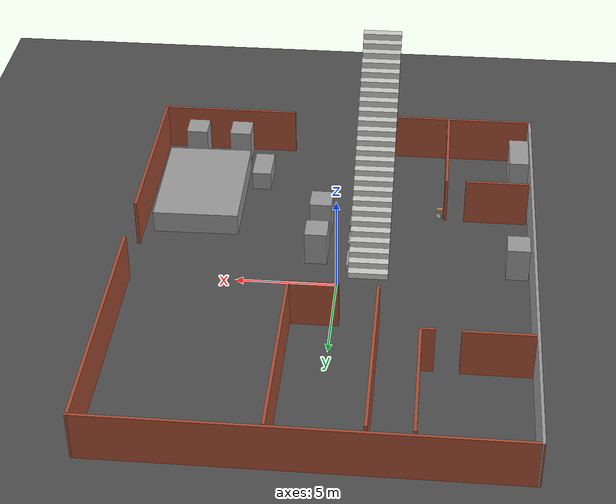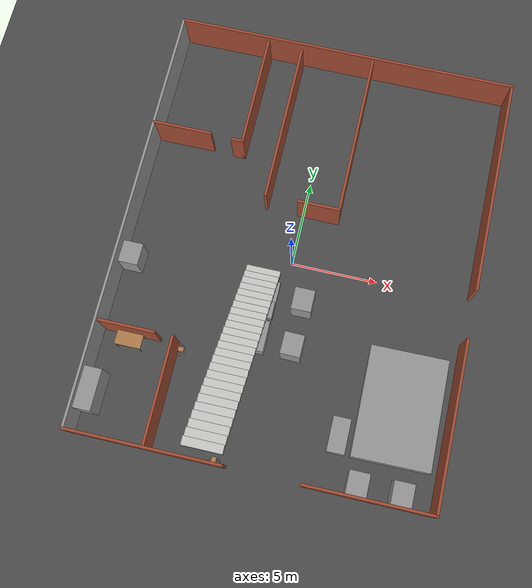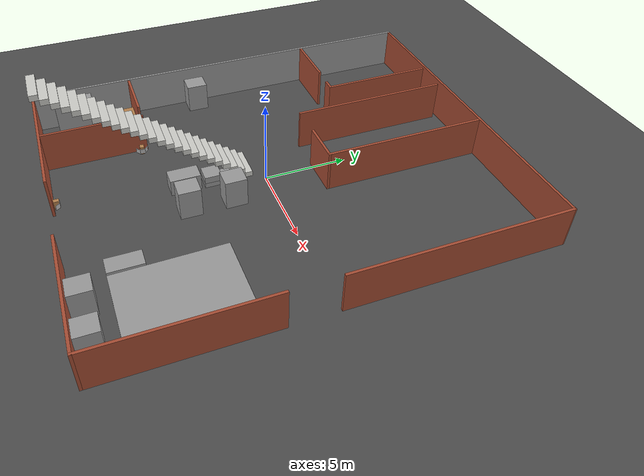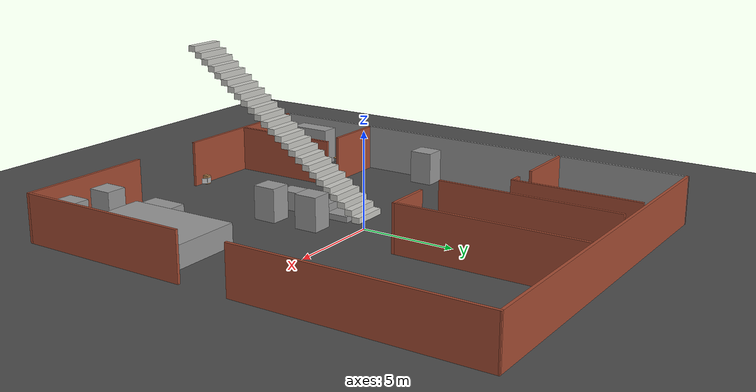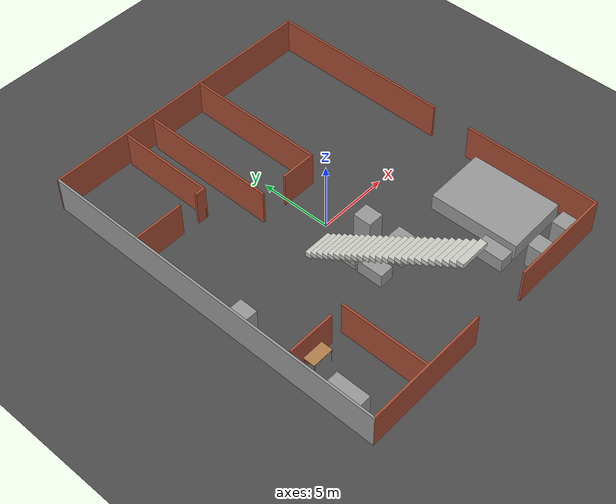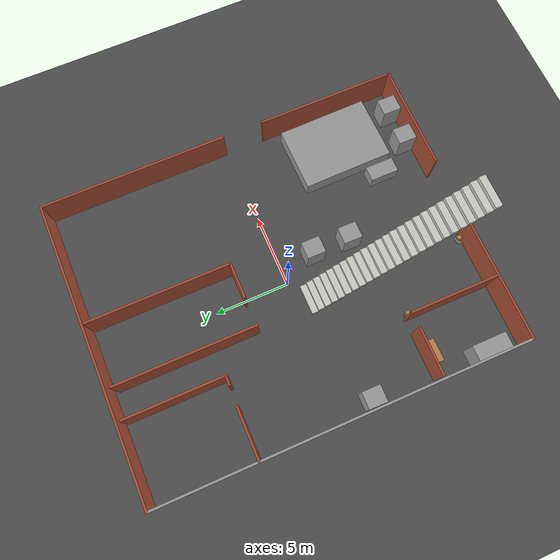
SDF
<sdf version="1.6">
 <world name="default">
  <model name="ground_plane">
   <static>1</static>
   <link name="link">
    <collision name="collision">
     <geometry><plane><normal>0 0 1</normal><size>100 100</size></plane></geometry>
     <surface><friction><ode><mu>100</mu><mu2>50</mu2></ode></friction></surface>
    </collision>
    <visual name="visual">
     <cast_shadows>0</cast_shadows>
     <geometry><plane><normal>0 0 1</normal><size>100 100</size></plane></geometry>
     <material>
      <script><uri>file://media/materials/scripts/gazebo.material</uri><name>Gazebo/DarkGrey</name></script>
     </material>
    </visual>
   </link>
  </model>
  <model name="CIMA_LAB">
   <pose>0.392007 0.399325 0 0 -0 0</pose>
   <link name="Stairs_2">
    <visual name="Stairs_2_Visual_0">
     <pose>-1.90803 -1.27666 0.16 0 -0 0</pose>
     <geometry><box><size>2 0.44 0.32</size></box></geometry>
     <material>
      <script><uri>file://media/materials/scripts/gazebo.material</uri><name>Gazebo/CeilingTiled</name></script>
      <ambient>0.760784 0.662745 0.627451 1</ambient>
     </material>
     <meta><layer>0</layer></meta>
    </visual>
    <collision name="Stairs_2_Collision_0">
     <geometry><box><size>2 0.44 0.32</size></box></geometry>
     <pose>-1.90803 -1.27666 0.16 0 -0 0</pose>
    </collision>
    <visual name="Stairs_2_Visual_1">
     <pose>-1.90803 -1.71666 0.48 0 -0 0</pose>
     <geometry><box><size>2 0.44 0.32</size></box></geometry>
     <material>
      <script><uri>file://media/materials/scripts/gazebo.material</uri><name>Gazebo/CeilingTiled</name></script>
      <ambient>0.760784 0.662745 0.627451 1</ambient>
     </material>
     <meta><layer>0</layer></meta>
    </visual>
    <collision name="Stairs_2_Collision_1">
     <geometry><box><size>2 0.44 0.32</size></box></geometry>
     <pose>-1.90803 -1.71666 0.48 0 -0 0</pose>
    </collision>
    <visual name="Stairs_2_Visual_2">
     <pose>-1.90803 -2.15666 0.8 0 -0 0</pose>
     <geometry><box><size>2 0.44 0.32</size></box></geometry>
     <material>
      <script><uri>file://media/materials/scripts/gazebo.material</uri><name>Gazebo/CeilingTiled</name></script>
      <ambient>0.760784 0.662745 0.627451 1</ambient>
     </material>
     <meta><layer>0</layer></meta>
    </visual>
    <collision name="Stairs_2_Collision_2">
     <geometry><box><size>2 0.44 0.32</size></box></geometry>
     <pose>-1.90803 -2.15666 0.8 0 -0 0</pose>
    </collision>
    <visual name="Stairs_2_Visual_3">
     <pose>-1.90803 -2.59666 1.12 0 -0 0</pose>
     <geometry><box><size>2 0.44 0.32</size></box></geometry>
     <material>
      <script><uri>file://media/materials/scripts/gazebo.material</uri><name>Gazebo/CeilingTiled</name></script>
      <ambient>0.760784 0.662745 0.627451 1</ambient>
     </material>
     <meta><layer>0</layer></meta>
    </visual>
    <collision name="Stairs_2_Collision_3">
     <geometry><box><size>2 0.44 0.32</size></box></geometry>
     <pose>-1.90803 -2.59666 1.12 0 -0 0</pose>
    </collision>
    <visual name="Stairs_2_Visual_4">
     <pose>-1.90803 -3.03666 1.44 0 -0 0</pose>
     <geometry><box><size>2 0.44 0.32</size></box></geometry>
     <material>
      <script><uri>file://media/materials/scripts/gazebo.material</uri><name>Gazebo/CeilingTiled</name></script>
      <ambient>0.760784 0.662745 0.627451 1</ambient>
     </material>
     <meta><layer>0</layer></meta>
    </visual>
    <collision name="Stairs_2_Collision_4">
     <geometry><box><size>2 0.44 0.32</size></box></geometry>
     <pose>-1.90803 -3.03666 1.44 0 -0 0</pose>
    </collision>
    <visual name="Stairs_2_Visual_5">
     <pose>-1.90803 -3.47666 1.76 0 -0 0</pose>
     <geometry><box><size>2 0.44 0.32</size></box></geometry>
     <material>
      <script><uri>file://media/materials/scripts/gazebo.material</uri><name>Gazebo/CeilingTiled</name></script>
      <ambient>0.760784 0.662745 0.627451 1</ambient>
     </material>
     <meta><layer>0</layer></meta>
    </visual>
    <collision name="Stairs_2_Collision_5">
     <geometry><box><size>2 0.44 0.32</size></box></geometry>
     <pose>-1.90803 -3.47666 1.76 0 -0 0</pose>
    </collision>
    <visual name="Stairs_2_Visual_6">
     <pose>-1.90803 -3.91666 2.08 0 -0 0</pose>
     <geometry><box><size>2 0.44 0.32</size></box></geometry>
     <material>
      <script><uri>file://media/materials/scripts/gazebo.material</uri><name>Gazebo/CeilingTiled</name></script>
      <ambient>0.760784 0.662745 0.627451 1</ambient>
     </material>
     <meta><layer>0</layer></meta>
    </visual>
    <collision name="Stairs_2_Collision_6">
     <geometry><box><size>2 0.44 0.32</size></box></geometry>
     <pose>-1.90803 -3.91666 2.08 0 -0 0</pose>
    </collision>
    <visual name="Stairs_2_Visual_7">
     <pose>-1.90803 -4.35666 2.4 0 -0 0</pose>
     <geometry><box><size>2 0.44 0.32</size></box></geometry>
     <material>
      <script><uri>file://media/materials/scripts/gazebo.material</uri><name>Gazebo/CeilingTiled</name></script>
      <ambient>0.760784 0.662745 0.627451 1</ambient>
     </material>
     <meta><layer>0</layer></meta>
    </visual>
    <collision name="Stairs_2_Collision_7">
     <geometry><box><size>2 0.44 0.32</size></box></geometry>
     <pose>-1.90803 -4.35666 2.4 0 -0 0</pose>
    </collision>
    <visual name="Stairs_2_Visual_8">
     <pose>-1.90803 -4.79666 2.72 0 -0 0</pose>
     <geometry><box><size>2 0.44 0.32</size></box></geometry>
     <material>
      <script><uri>file://media/materials/scripts/gazebo.material</uri><name>Gazebo/CeilingTiled</name></script>
      <ambient>0.760784 0.662745 0.627451 1</ambient>
     </material>
     <meta><layer>0</layer></meta>
    </visual>
    <collision name="Stairs_2_Collision_8">
     <geometry><box><size>2 0.44 0.32</size></box></geometry>
     <pose>-1.90803 -4.79666 2.72 0 -0 0</pose>
    </collision>
    <visual name="Stairs_2_Visual_9">
     <pose>-1.90803 -5.23666 3.04 0 -0 0</pose>
     <geometry><box><size>2 0.44 0.32</size></box></geometry>
     <material>
      <script><uri>file://media/materials/scripts/gazebo.material</uri><name>Gazebo/CeilingTiled</name></script>
      <ambient>0.760784 0.662745 0.627451 1</ambient>
     </material>
     <meta><layer>0</layer></meta>
    </visual>
    <collision name="Stairs_2_Collision_9">
     <geometry><box><size>2 0.44 0.32</size></box></geometry>
     <pose>-1.90803 -5.23666 3.04 0 -0 0</pose>
    </collision>
    <visual name="Stairs_2_Visual_10">
     <pose>-1.90803 -5.67666 3.36 0 -0 0</pose>
     <geometry><box><size>2 0.44 0.32</size></box></geometry>
     <material>
      <script><uri>file://media/materials/scripts/gazebo.material</uri><name>Gazebo/CeilingTiled</name></script>
      <ambient>0.760784 0.662745 0.627451 1</ambient>
     </material>
     <meta><layer>0</layer></meta>
    </visual>
    <collision name="Stairs_2_Collision_10">
     <geometry><box><size>2 0.44 0.32</size></box></geometry>
     <pose>-1.90803 -5.67666 3.36 0 -0 0</pose>
    </collision>
    <visual name="Stairs_2_Visual_11">
     <pose>-1.90803 -6.11666 3.68 0 -0 0</pose>
     <geometry><box><size>2 0.44 0.32</size></box></geometry>
     <material>
      <script><uri>file://media/materials/scripts/gazebo.material</uri><name>Gazebo/CeilingTiled</name></script>
      <ambient>0.760784 0.662745 0.627451 1</ambient>
     </material>
     <meta><layer>0</layer></meta>
    </visual>
    <collision name="Stairs_2_Collision_11">
     <geometry><box><size>2 0.44 0.32</size></box></geometry>
     <pose>-1.90803 -6.11666 3.68 0 -0 0</pose>
    </collision>
    <visual name="Stairs_2_Visual_12">
     <pose>-1.90803 -6.55666 4 0 -0 0</pose>
     <geometry><box><size>2 0.44 0.32</size></box></geometry>
     <material>
      <script><uri>file://media/materials/scripts/gazebo.material</uri><name>Gazebo/CeilingTiled</name></script>
      <ambient>0.760784 0.662745 0.627451 1</ambient>
     </material>
     <meta><layer>0</layer></meta>
    </visual>
    <collision name="Stairs_2_Collision_12">
     <geometry><box><size>2 0.44 0.32</size></box></geometry>
     <pose>-1.90803 -6.55666 4 0 -0 0</pose>
    </collision>
    <visual name="Stairs_2_Visual_13">
     <pose>-1.90803 -6.99666 4.32 0 -0 0</pose>
     <geometry><box><size>2 0.44 0.32</size></box></geometry>
     <material>
      <script><uri>file://media/materials/scripts/gazebo.material</uri><name>Gazebo/CeilingTiled</name></script>
      <ambient>0.760784 0.662745 0.627451 1</ambient>
     </material>
     <meta><layer>0</layer></meta>
    </visual>
    <collision name="Stairs_2_Collision_13">
     <geometry><box><size>2 0.44 0.32</size></box></geometry>
     <pose>-1.90803 -6.99666 4.32 0 -0 0</pose>
    </collision>
    <visual name="Stairs_2_Visual_14">
     <pose>-1.90803 -7.43666 4.64 0 -0 0</pose>
     <geometry><box><size>2 0.44 0.32</size></box></geometry>
     <material>
      <script><uri>file://media/materials/scripts/gazebo.material</uri><name>Gazebo/CeilingTiled</name></script>
      <ambient>0.760784 0.662745 0.627451 1</ambient>
     </material>
     <meta><layer>0</layer></meta>
    </visual>
    <collision name="Stairs_2_Collision_14">
     <geometry><box><size>2 0.44 0.32</size></box></geometry>
     <pose>-1.90803 -7.43666 4.64 0 -0 0</pose>
    </collision>
    <visual name="Stairs_2_Visual_15">
     <pose>-1.90803 -7.87666 4.96 0 -0 0</pose>
     <geometry><box><size>2 0.44 0.32</size></box></geometry>
     <material>
      <script><uri>file://media/materials/scripts/gazebo.material</uri><name>Gazebo/CeilingTiled</name></script>
      <ambient>0.760784 0.662745 0.627451 1</ambient>
     </material>
     <meta><layer>0</layer></meta>
    </visual>
    <collision name="Stairs_2_Collision_15">
     <geometry><box><size>2 0.44 0.32</size></box></geometry>
     <pose>-1.90803 -7.87666 4.96 0 -0 0</pose>
    </collision>
    <visual name="Stairs_2_Visual_16">
     <pose>-1.90803 -8.31666 5.28 0 -0 0</pose>
     <geometry><box><size>2 0.44 0.32</size></box></geometry>
     <material>
      <script><uri>file://media/materials/scripts/gazebo.material</uri><name>Gazebo/CeilingTiled</name></script>
      <ambient>0.760784 0.662745 0.627451 1</ambient>
     </material>
     <meta><layer>0</layer></meta>
    </visual>
    <collision name="Stairs_2_Collision_16">
     <geometry><box><size>2 0.44 0.32</size></box></geometry>
     <pose>-1.90803 -8.31666 5.28 0 -0 0</pose>
    </collision>
    <visual name="Stairs_2_Visual_17">
     <pose>-1.90803 -8.75666 5.6 0 -0 0</pose>
     <geometry><box><size>2 0.44 0.32</size></box></geometry>
     <material>
      <script><uri>file://media/materials/scripts/gazebo.material</uri><name>Gazebo/CeilingTiled</name></script>
      <ambient>0.760784 0.662745 0.627451 1</ambient>
     </material>
     <meta><layer>0</layer></meta>
    </visual>
    <collision name="Stairs_2_Collision_17">
     <geometry><box><size>2 0.44 0.32</size></box></geometry>
     <pose>-1.90803 -8.75666 5.6 0 -0 0</pose>
    </collision>
    <visual name="Stairs_2_Visual_18">
     <pose>-1.90803 -9.19666 5.92 0 -0 0</pose>
     <geometry><box><size>2 0.44 0.32</size></box></geometry>
     <material>
      <script><uri>file://media/materials/scripts/gazebo.material</uri><name>Gazebo/CeilingTiled</name></script>
      <ambient>0.760784 0.662745 0.627451 1</ambient>
     </material>
     <meta><layer>0</layer></meta>
    </visual>
    <collision name="Stairs_2_Collision_18">
     <geometry><box><size>2 0.44 0.32</size></box></geometry>
     <pose>-1.90803 -9.19666 5.92 0 -0 0</pose>
    </collision>
    <visual name="Stairs_2_Visual_19">
     <pose>-1.90803 -9.63666 6.24 0 -0 0</pose>
     <geometry><box><size>2 0.44 0.32</size></box></geometry>
     <material>
      <script><uri>file://media/materials/scripts/gazebo.material</uri><name>Gazebo/CeilingTiled</name></script>
      <ambient>0.760784 0.662745 0.627451 1</ambient>
     </material>
     <meta><layer>0</layer></meta>
    </visual>
    <collision name="Stairs_2_Collision_19">
     <geometry><box><size>2 0.44 0.32</size></box></geometry>
     <pose>-1.90803 -9.63666 6.24 0 -0 0</pose>
    </collision>
    <visual name="Stairs_2_Visual_20">
     <pose>-1.90803 -10.0767 6.56 0 -0 0</pose>
     <geometry><box><size>2 0.44 0.32</size></box></geometry>
     <material>
      <script><uri>file://media/materials/scripts/gazebo.material</uri><name>Gazebo/CeilingTiled</name></script>
      <ambient>0.760784 0.662745 0.627451 1</ambient>
     </material>
     <meta><layer>0</layer></meta>
    </visual>
    <collision name="Stairs_2_Collision_20">
     <geometry><box><size>2 0.44 0.32</size></box></geometry>
     <pose>-1.90803 -10.0767 6.56 0 -0 0</pose>
    </collision>
    <visual name="Stairs_2_Visual_21">
     <pose>-1.90803 -10.5167 6.88 0 -0 0</pose>
     <geometry><box><size>2 0.44 0.32</size></box></geometry>
     <material>
      <script><uri>file://media/materials/scripts/gazebo.material</uri><name>Gazebo/CeilingTiled</name></script>
      <ambient>0.760784 0.662745 0.627451 1</ambient>
     </material>
     <meta><layer>0</layer></meta>
    </visual>
    <collision name="Stairs_2_Collision_21">
     <geometry><box><size>2 0.44 0.32</size></box></geometry>
     <pose>-1.90803 -10.5167 6.88 0 -0 0</pose>
    </collision>
    <visual name="Stairs_2_Visual_22">
     <pose>-1.90803 -10.9567 7.2 0 -0 0</pose>
     <geometry><box><size>2 0.44 0.32</size></box></geometry>
     <material>
      <script><uri>file://media/materials/scripts/gazebo.material</uri><name>Gazebo/CeilingTiled</name></script>
      <ambient>0.760784 0.662745 0.627451 1</ambient>
     </material>
     <meta><layer>0</layer></meta>
    </visual>
    <collision name="Stairs_2_Collision_22">
     <geometry><box><size>2 0.44 0.32</size></box></geometry>
     <pose>-1.90803 -10.9567 7.2 0 -0 0</pose>
    </collision>
    <visual name="Stairs_2_Visual_23">
     <pose>-1.90803 -11.3967 7.52 0 -0 0</pose>
     <geometry><box><size>2 0.44 0.32</size></box></geometry>
     <material>
      <script><uri>file://media/materials/scripts/gazebo.material</uri><name>Gazebo/CeilingTiled</name></script>
      <ambient>0.760784 0.662745 0.627451 1</ambient>
     </material>
     <meta><layer>0</layer></meta>
    </visual>
    <collision name="Stairs_2_Collision_23">
     <geometry><box><size>2 0.44 0.32</size></box></geometry>
     <pose>-1.90803 -11.3967 7.52 0 -0 0</pose>
    </collision>
    <visual name="Stairs_2_Visual_24">
     <pose>-1.90803 -11.8367 7.84 0 -0 0</pose>
     <geometry><box><size>2 0.44 0.32</size></box></geometry>
     <material>
      <script><uri>file://media/materials/scripts/gazebo.material</uri><name>Gazebo/CeilingTiled</name></script>
      <ambient>0.760784 0.662745 0.627451 1</ambient>
     </material>
     <meta><layer>0</layer></meta>
    </visual>
    <collision name="Stairs_2_Collision_24">
     <geometry><box><size>2 0.44 0.32</size></box></geometry>
     <pose>-1.90803 -11.8367 7.84 0 -0 0</pose>
    </collision>
   </link>
   <link name="Wall_0">
    <collision name="Wall_0_Collision">
     <geometry><box><size>25 0.15 2.5</size></box></geometry>
     <pose>0 0 1.25 0 -0 0</pose>
    </collision>
    <visual name="Wall_0_Visual">
     <pose>0 0 1.25 0 -0 0</pose>
     <geometry><box><size>25 0.15 2.5</size></box></geometry>
     <material>
      <script><uri>file://media/materials/scripts/gazebo.material</uri><name>Gazebo/Grey</name></script>
      <ambient>1 1 1 1</ambient>
     </material>
     <meta><layer>0</layer></meta>
    </visual>
    <pose>-10 0.009925 0 0 -0 -1.5708</pose>
   </link>
   <link name="Wall_15">
    <collision name="Wall_15_Collision">
     <geometry><box><size>0.75 0.15 2.5</size></box></geometry>
     <pose>0 0 1.25 0 -0 0</pose>
    </collision>
    <visual name="Wall_15_Visual">
     <pose>0 0 1.25 0 -0 0</pose>
     <geometry><box><size>0.75 0.15 2.5</size></box></geometry>
     <material>
      <script><uri>file://media/materials/scripts/gazebo.material</uri><name>Gazebo/Bricks</name></script>
      <ambient>1 1 1 1</ambient>
     </material>
     <meta><layer>0</layer></meta>
    </visual>
    <pose>-4.97494 5.50618 0 0 -0 0</pose>
   </link>
   <link name="Wall_16">
    <collision name="Wall_16_Collision">
     <geometry><box><size>6.75 0.15 2.5</size></box></geometry>
     <pose>0 0 1.25 0 -0 0</pose>
    </collision>
    <visual name="Wall_16_Visual">
     <pose>0 0 1.25 0 -0 0</pose>
     <geometry><box><size>6.75 0.15 2.5</size></box></geometry>
     <material>
      <script><uri>file://media/materials/scripts/gazebo.material</uri><name>Gazebo/Bricks</name></script>
      <ambient>1 1 1 1</ambient>
     </material>
     <meta><layer>0</layer></meta>
    </visual>
    <pose>-4.67494 8.80618 0 0 -0 1.5708</pose>
   </link>
   <link name="Wall_18">
    <collision name="Wall_18_Collision">
     <geometry><box><size>3.5 0.15 2.5</size></box></geometry>
     <pose>0 0 1.25 0 -0 0</pose>
    </collision>
    <visual name="Wall_18_Visual">
     <pose>0 0 1.25 0 -0 0</pose>
     <geometry><box><size>3.5 0.15 2.5</size></box></geometry>
     <material>
      <script><uri>file://media/materials/scripts/gazebo.material</uri><name>Gazebo/Bricks</name></script>
      <ambient>1 1 1 1</ambient>
     </material>
     <meta><layer>0</layer></meta>
    </visual>
    <pose>-8.28251 5.57631 0 0 -0 3.14159</pose>
   </link>
   <link name="Wall_2">
    <collision name="Wall_2_Collision">
     <geometry><box><size>12.75 0.15 2.5</size></box></geometry>
     <pose>0 0 1.25 0 -0 0</pose>
    </collision>
    <visual name="Wall_2_Visual">
     <pose>0 0 1.25 0 -0 0</pose>
     <geometry><box><size>12.75 0.15 2.5</size></box></geometry>
     <material>
      <script><uri>file://media/materials/scripts/gazebo.material</uri><name>Gazebo/Bricks</name></script>
      <ambient>1 1 1 1</ambient>
     </material>
     <meta><layer>0</layer></meta>
    </visual>
    <pose>10 6.09492 0 0 -0 1.5708</pose>
   </link>
   <link name="Wall_20">
    <collision name="Wall_20_Collision">
     <geometry><box><size>9.75 0.15 2.5</size></box></geometry>
     <pose>0 0 1.25 0 -0 0</pose>
    </collision>
    <visual name="Wall_20_Visual">
     <pose>0 0 1.25 0 -0 0</pose>
     <geometry><box><size>9.75 0.15 2.5</size></box></geometry>
     <material>
      <script><uri>file://media/materials/scripts/gazebo.material</uri><name>Gazebo/Bricks</name></script>
      <ambient>1 1 1 1</ambient>
     </material>
     <meta><layer>0</layer></meta>
    </visual>
    <pose>1.66843 7.43914 0 0 -0 -1.5708</pose>
   </link>
   <link name="Wall_21">
    <collision name="Wall_21_Collision">
     <geometry><box><size>2.5 0.15 2.5</size></box></geometry>
     <pose>0 0 1.25 0 -0 0</pose>
    </collision>
    <visual name="Wall_21_Visual">
     <pose>0 0 1.25 0 -0 0</pose>
     <geometry><box><size>2.5 0.15 2.5</size></box></geometry>
     <material>
      <script><uri>file://media/materials/scripts/gazebo.material</uri><name>Gazebo/Bricks</name></script>
      <ambient>1 1 1 1</ambient>
     </material>
     <meta><layer>0</layer></meta>
    </visual>
    <pose>0.493428 2.63914 0 0 -0 3.14159</pose>
   </link>
   <link name="Wall_23">
    <collision name="Wall_23_Collision">
     <geometry><box><size>9.5 0.15 2.5</size></box></geometry>
     <pose>0 0 1.25 0 -0 0</pose>
    </collision>
    <visual name="Wall_23_Visual">
     <pose>0 0 1.25 0 -0 0</pose>
     <geometry><box><size>9.5 0.15 2.5</size></box></geometry>
     <material>
      <script><uri>file://media/materials/scripts/gazebo.material</uri><name>Gazebo/Bricks</name></script>
      <ambient>1 1 1 1</ambient>
     </material>
     <meta><layer>0</layer></meta>
    </visual>
    <pose>-2.60981 7.30564 0 0 -0 1.5708</pose>
   </link>
   <link name="Wall_25">
    <collision name="Wall_25_Collision">
     <geometry><box><size>3.25 0.15 2.5</size></box></geometry>
     <pose>0 0 1.25 0 -0 0</pose>
    </collision>
    <visual name="Wall_25_Visual">
     <pose>0 0 1.25 0 -0 0</pose>
     <geometry><box><size>3.25 0.15 2.5</size></box></geometry>
     <material>
      <script><uri>file://media/materials/scripts/gazebo.material</uri><name>Gazebo/Bricks</name></script>
      <ambient>1 1 1 1</ambient>
     </material>
     <meta><layer>0</layer></meta>
    </visual>
    <pose>-8.22765 -6.41678 0 0 -0 3.14159</pose>
   </link>
   <link name="Wall_27">
    <collision name="Wall_27_Collision">
     <geometry><box><size>6 0.15 2.5</size></box></geometry>
     <pose>0 0 1.25 0 -0 0</pose>
    </collision>
    <visual name="Wall_27_Visual">
     <pose>0 0 1.25 0 -0 0</pose>
     <geometry><box><size>6 0.15 2.5</size></box></geometry>
     <material>
      <script><uri>file://media/materials/scripts/gazebo.material</uri><name>Gazebo/Bricks</name></script>
      <ambient>1 1 1 1</ambient>
     </material>
     <meta><layer>0</layer></meta>
    </visual>
    <pose>-5.62562 -9.34178 0 0 -0 -1.5708</pose>
   </link>
   <link name="Wall_3">
    <collision name="Wall_3_Collision">
     <geometry><box><size>20.15 0.15 2.5</size></box></geometry>
     <pose>0 0 1.25 0 -0 0</pose>
    </collision>
    <visual name="Wall_3_Visual">
     <pose>0 0 1.25 0 -0 0</pose>
     <geometry><box><size>20.15 0.15 2.5</size></box></geometry>
     <material>
      <script><uri>file://media/materials/scripts/gazebo.material</uri><name>Gazebo/Bricks</name></script>
      <ambient>1 1 1 1</ambient>
     </material>
     <meta><layer>0</layer></meta>
    </visual>
    <pose>0 12.4149 0 0 -0 3.13959</pose>
   </link>
   <link name="Wall_4">
    <collision name="Wall_4_Collision">
     <geometry><box><size>25 0.15 2.5</size></box></geometry>
     <pose>0 0 1.25 0 -0 0</pose>
    </collision>
    <visual name="Wall_4_Visual">
     <pose>0 0 1.25 0 -0 0</pose>
     <geometry><box><size>25 0.15 2.5</size></box></geometry>
     <material>
      <script><uri>file://media/materials/scripts/gazebo.material</uri><name>Gazebo/Bricks</name></script>
      <ambient>1 1 1 1</ambient>
     </material>
     <meta><layer>0</layer></meta>
    </visual>
    <pose>-10 0.009925 0 0 -0 -1.5708</pose>
   </link>
   <link name="Wall_5">
    <collision name="Wall_5_Collision">
     <geometry><box><size>8.75 0.15 2.5</size></box></geometry>
     <pose>0 0 1.25 0 -0 0</pose>
    </collision>
    <visual name="Wall_5_Visual">
     <pose>0 0 1.25 0 -0 0</pose>
     <geometry><box><size>8.75 0.15 2.5</size></box></geometry>
     <material>
      <script><uri>file://media/materials/scripts/gazebo.material</uri><name>Gazebo/Bricks</name></script>
      <ambient>1 1 1 1</ambient>
     </material>
     <meta><layer>0</layer></meta>
    </visual>
    <pose>-5.7 -12.4151 0 0 -0 0</pose>
   </link>
   <link name="Wall_7">
    <collision name="Wall_7_Collision">
     <geometry><box><size>9.5 0.15 2.5</size></box></geometry>
     <pose>0 0 1.25 0 -0 0</pose>
    </collision>
    <visual name="Wall_7_Visual">
     <pose>0 0 1.25 0 -0 0</pose>
     <geometry><box><size>9.5 0.15 2.5</size></box></geometry>
     <material>
      <script><uri>file://media/materials/scripts/gazebo.material</uri><name>Gazebo/Bricks</name></script>
      <ambient>1 1 1 1</ambient>
     </material>
     <meta><layer>0</layer></meta>
    </visual>
    <pose>10 -7.76007 0 0 -0 -1.5708</pose>
   </link>
   <link name="Wall_8">
    <collision name="Wall_8_Collision">
     <geometry><box><size>7.25 0.15 2.5</size></box></geometry>
     <pose>0 0 1.25 0 -0 0</pose>
    </collision>
    <visual name="Wall_8_Visual">
     <pose>0 0 1.25 0 -0 0</pose>
     <geometry><box><size>7.25 0.15 2.5</size></box></geometry>
     <material>
      <script><uri>file://media/materials/scripts/gazebo.material</uri><name>Gazebo/Bricks</name></script>
      <ambient>1 1 1 1</ambient>
     </material>
     <meta><layer>0</layer></meta>
    </visual>
    <pose>6.45 -12.4351 0 0 -0 3.14159</pose>
   </link>
   <static>1</static>
  </model>
  <model name="unit_box_clone">
   <pose>1.15733 -4.90091 0.892855 0 0 -0.012171</pose>
   <link name="link">
    <inertial>
     <mass>1</mass>
     <inertia>
      <ixx>0.166667</ixx>
      <ixy>0</ixy>
      <ixz>0</ixz>
      <iyy>0.166667</iyy>
      <iyz>0</iyz>
      <izz>0.166667</izz>
     </inertia>
    </inertial>
    <collision name="collision"><geometry><box><size>1.13282 1.25934 1.78571</size></box></geometry></collision>
    <visual name="visual">
     <geometry><box><size>1.13282 1.25934 1.78571</size></box></geometry>
     <material>
      <script><name>Gazebo/Grey</name><uri>file://media/materials/scripts/gazebo.material</uri></script>
     </material>
    </visual>
   </link>
  </model>
  <model name="unit_box_clone_3">
   <pose>8.55641 -11.3311 0.892851 6e-06 -1e-06 -3e-06</pose>
   <link name="link">
    <inertial>
     <mass>1</mass>
     <inertia>
      <ixx>0.166667</ixx>
      <ixy>0</ixy>
      <ixz>0</ixz>
      <iyy>0.166667</iyy>
      <iyz>0</iyz>
      <izz>0.166667</izz>
     </inertia>
    </inertial>
    <collision name="collision"><geometry><box><size>1.13282 1.25934 1.78571</size></box></geometry></collision>
    <visual name="visual">
     <geometry><box><size>1.13282 1.25934 1.78571</size></box></geometry>
     <material>
      <script><name>Gazebo/Grey</name><uri>file://media/materials/scripts/gazebo.material</uri></script>
     </material>
    </visual>
   </link>
  </model>
  <model name="unit_box_clone_4">
   <pose>6.15028 -11.3248 0.892851 6e-06 0 -0.004505</pose>
   <link name="link">
    <inertial>
     <mass>1</mass>
     <inertia>
      <ixx>0.166667</ixx>
      <ixy>0</ixy>
      <ixz>0</ixz>
      <iyy>0.166667</iyy>
      <iyz>0</iyz>
      <izz>0.166667</izz>
     </inertia>
    </inertial>
    <collision name="collision"><geometry><box><size>1.13282 1.25934 1.78571</size></box></geometry></collision>
    <visual name="visual">
     <geometry><box><size>1.13282 1.25934 1.78571</size></box></geometry>
     <material>
      <script><name>Gazebo/Grey</name><uri>file://media/materials/scripts/gazebo.material</uri></script>
     </material>
    </visual>
   </link>
  </model>
  <model name="unit_box_clone_6">
   <pose>-8.91775 -1.81085 0.892855 0 0 -0.008855</pose>
   <link name="link">
    <inertial>
     <mass>1</mass>
     <inertia>
      <ixx>0.166667</ixx>
      <ixy>0</ixy>
      <ixz>0</ixz>
      <iyy>0.166667</iyy>
      <iyz>0</iyz>
      <izz>0.166667</izz>
     </inertia>
    </inertial>
    <collision name="collision"><geometry><box><size>1.13282 1.25934 1.78571</size></box></geometry></collision>
    <visual name="visual">
     <geometry><box><size>1.13282 1.25934 1.78571</size></box></geometry>
     <material>
      <script><name>Gazebo/Grey</name><uri>file://media/materials/scripts/gazebo.material</uri></script>
     </material>
    </visual>
   </link>
  </model>
  <model name="unit_box_1_clone_0">
   <pose>-0.888348 -4.66798 0.499995 0 9e-06 1.4e-05</pose>
   <link name="link">
    <inertial>
     <mass>1</mass>
     <inertia>
      <ixx>0.166667</ixx>
      <ixy>0</ixy>
      <ixz>0</ixz>
      <iyy>0.166667</iyy>
      <iyz>0</iyz>
      <izz>0.166667</izz>
     </inertia>
    </inertial>
    <collision name="collision"><geometry><box><size>1 1.78009 1</size></box></geometry></collision>
    <visual name="visual">
     <geometry><box><size>1 1.78009 1</size></box></geometry>
     <material>
      <script><name>Gazebo/Grey</name><uri>file://media/materials/scripts/gazebo.material</uri></script>
     </material>
    </visual>
   </link>
  </model>
  <model name="Support_box_wood_clone_clone">
   <link name="link">
    <inertial>
     <mass>0.0406949</mass>
     <inertia>
      <ixx>0.00114102</ixx>
      <ixy>0</ixy>
      <ixz>0</ixz>
      <iyy>0.00102768</iyy>
      <iyz>0</iyz>
      <izz>0.000581951</izz>
     </inertia>
    </inertial>
    <pose>0.062754 0.860403 -0.243846 0 -0 0</pose>
    <visual name="visual">
     <geometry><box><size>0.252854 0.320175 0.483682</size></box></geometry>
     <material>
      <script><name>Gazebo/Wood</name><uri>file://media/materials/scripts/gazebo.material</uri></script>
      <shader type="vertex"><normal_map>__default__</normal_map></shader>
      <ambient>0.3 0.3 0.3 1</ambient>
      <diffuse>0.7 0.7 0.7 1</diffuse>
      <specular>0.01 0.01 0.01 1</specular>
      <emissive>0 0 0 1</emissive>
     </material>
    </visual>
    <visual name="ModelPreview_4::link::visual_1">
     <geometry><box><size>0.252854 0.320175 0.483682</size></box></geometry>
     <material>
      <script><name>Gazebo/Wood</name><uri>file://media/materials/scripts/gazebo.material</uri></script>
      <shader type="vertex"><normal_map>__default__</normal_map></shader>
      <ambient>0.3 0.3 0.3 1</ambient>
      <diffuse>0.7 0.7 0.7 1</diffuse>
      <specular>0.01 0.01 0.01 1</specular>
      <emissive>0 0 0 1</emissive>
     </material>
    </visual>
    <collision name="collision">
     <geometry><box><size>0.262854 0.320175 0.483683</size></box></geometry>
     <surface>
      <friction>
       <ode><mu>1</mu><mu2>1</mu2><fdir1>0 0 0</fdir1><slip1>0</slip1><slip2>0</slip2></ode>
       <torsional>
        <coefficient>1</coefficient>
        <patch_radius>0</patch_radius>
        <surface_radius>0</surface_radius>
        <use_patch_radius>1</use_patch_radius>
        <ode><slip>0</slip></ode>
       </torsional>
      </friction>
      <bounce><restitution_coefficient>0</restitution_coefficient><threshold>1e+06</threshold></bounce>
      <contact>
       <collide_without_contact>0</collide_without_contact>
       <collide_without_contact_bitmask>1</collide_without_contact_bitmask>
       <collide_bitmask>1</collide_bitmask>
       <ode>
        <soft_cfm>0</soft_cfm>
        <soft_erp>0.2</soft_erp>
        <kp>1e+13</kp>
        <kd>1</kd>
        <max_vel>0.01</max_vel>
        <min_depth>0</min_depth>
       </ode>
       <bullet>
        <split_impulse>1</split_impulse>
        <split_impulse_penetration_threshold>-0.01</split_impulse_penetration_threshold>
        <soft_cfm>0</soft_cfm>
        <soft_erp>0.2</soft_erp>
        <kp>1e+13</kp>
        <kd>1</kd>
       </bullet>
      </contact>
     </surface>
    </collision>
   </link>
   <static>0</static>
   <pose>-5.81113 -6.22506 0.48567 1.7e-05 1e-05 -1.6089</pose>
  </model>
  <model name="Support_box_wood_clone_clone_clone">
   <link name="link">
    <inertial>
     <mass>0.0406949</mass>
     <inertia>
      <ixx>0.00114102</ixx>
      <ixy>0</ixy>
      <ixz>0</ixz>
      <iyy>0.00102768</iyy>
      <iyz>0</iyz>
      <izz>0.000581951</izz>
     </inertia>
    </inertial>
    <pose>0.062754 0.860403 -0.243846 0 -0 0</pose>
    <visual name="visual">
     <geometry><box><size>0.252854 0.320175 0.483682</size></box></geometry>
     <material>
      <script><name>Gazebo/Wood</name><uri>file://media/materials/scripts/gazebo.material</uri></script>
      <shader type="vertex"><normal_map>__default__</normal_map></shader>
      <ambient>0.3 0.3 0.3 1</ambient>
      <diffuse>0.7 0.7 0.7 1</diffuse>
      <specular>0.01 0.01 0.01 1</specular>
      <emissive>0 0 0 1</emissive>
     </material>
    </visual>
    <visual name="ModelPreview_4::link::visual_1">
     <geometry><box><size>0.252854 0.320175 0.483682</size></box></geometry>
     <material>
      <script><name>Gazebo/Wood</name><uri>file://media/materials/scripts/gazebo.material</uri></script>
      <shader type="vertex"><normal_map>__default__</normal_map></shader>
      <ambient>0.3 0.3 0.3 1</ambient>
      <diffuse>0.7 0.7 0.7 1</diffuse>
      <specular>0.01 0.01 0.01 1</specular>
      <emissive>0 0 0 1</emissive>
     </material>
    </visual>
    <collision name="collision">
     <geometry><box><size>0.262854 0.320175 0.483683</size></box></geometry>
     <surface>
      <friction>
       <ode><mu>1</mu><mu2>1</mu2><fdir1>0 0 0</fdir1><slip1>0</slip1><slip2>0</slip2></ode>
       <torsional>
        <coefficient>1</coefficient>
        <patch_radius>0</patch_radius>
        <surface_radius>0</surface_radius>
        <use_patch_radius>1</use_patch_radius>
        <ode><slip>0</slip></ode>
       </torsional>
      </friction>
      <bounce><restitution_coefficient>0</restitution_coefficient><threshold>1e+06</threshold></bounce>
      <contact>
       <collide_without_contact>0</collide_without_contact>
       <collide_without_contact_bitmask>1</collide_without_contact_bitmask>
       <collide_bitmask>1</collide_bitmask>
       <ode>
        <soft_cfm>0</soft_cfm>
        <soft_erp>0.2</soft_erp>
        <kp>1e+13</kp>
        <kd>1</kd>
        <max_vel>0.01</max_vel>
        <min_depth>0</min_depth>
       </ode>
       <bullet>
        <split_impulse>1</split_impulse>
        <split_impulse_penetration_threshold>-0.01</split_impulse_penetration_threshold>
        <soft_cfm>0</soft_cfm>
        <soft_erp>0.2</soft_erp>
        <kp>1e+13</kp>
        <kd>1</kd>
       </bullet>
      </contact>
     </surface>
    </collision>
   </link>
   <static>0</static>
   <pose>-1.71961 -12.6411 0.485673 1.4e-05 -0 6.2e-05</pose>
  </model>
  <model name="unit_box_3">
   <link name="link">
    <inertial>
     <mass>49.9493</mass>
     <inertia><ixx>40.0683</ixx><ixy>0</ixy><ixz>0</ixz><iyy>21.8965</iyy><iyz>0</iyz><izz>26.4967</izz></inertia>
    </inertial>
    <pose>-0.010701 -0.018736 0.991292 0 -0 0</pose>
    <visual name="visual">
     <geometry><box><size>1 2.31639 2.0641</size></box></geometry>
     <material>
      <script><name>Gazebo/Grey</name><uri>file://media/materials/scripts/gazebo.material</uri></script>
     </material>
    </visual>
    <collision name="collision">
     <geometry><box><size>1 2.31639 2.0641</size></box></geometry>
     <surface>
      <friction>
       <ode><mu>1</mu><mu2>1</mu2><fdir1>0 0 0</fdir1><slip1>0</slip1><slip2>0</slip2></ode>
       <torsional>
        <coefficient>1</coefficient>
        <patch_radius>0</patch_radius>
        <surface_radius>0</surface_radius>
        <use_patch_radius>1</use_patch_radius>
        <ode><slip>0</slip></ode>
       </torsional>
      </friction>
      <bounce><restitution_coefficient>0</restitution_coefficient><threshold>1e+06</threshold></bounce>
      <contact>
       <collide_without_contact>0</collide_without_contact>
       <collide_without_contact_bitmask>1</collide_without_contact_bitmask>
       <collide_bitmask>1</collide_bitmask>
       <ode>
        <soft_cfm>0</soft_cfm>
        <soft_erp>0.2</soft_erp>
        <kp>1e+13</kp>
        <kd>1</kd>
        <max_vel>0.01</max_vel>
        <min_depth>0</min_depth>
       </ode>
       <bullet>
        <split_impulse>1</split_impulse>
        <split_impulse_penetration_threshold>-0.01</split_impulse_penetration_threshold>
        <soft_cfm>0</soft_cfm>
        <soft_erp>0.2</soft_erp>
        <kp>1e+13</kp>
        <kd>1</kd>
       </bullet>
      </contact>
     </surface>
    </collision>
   </link>
   <static>0</static>
   <pose>-9.02069 -9.66783 0.040758 0 0 -3e-06</pose>
  </model>
  <model name="unit_box_5">
   <link name="link">
    <inertial>
     <mass>6.15926</mass>
     <inertia><ixx>2.45249</ixx><ixy>0</ixy><ixz>0</ixz><iyy>1.02654</iyy><iyz>0</iyz><izz>2.45249</izz></inertia>
    </inertial>
    <pose>0 -0.281367 0 0 -0 0</pose>
    <visual name="visual">
     <geometry><box><size>1 1.94375 1</size></box></geometry>
     <material>
      <script><name>Gazebo/Grey</name><uri>file://media/materials/scripts/gazebo.material</uri></script>
     </material>
    </visual>
    <collision name="collision">
     <geometry><box><size>1 1.94375 1</size></box></geometry>
     <surface>
      <friction>
       <ode><mu>1</mu><mu2>1</mu2><fdir1>0 0 0</fdir1><slip1>0</slip1><slip2>0</slip2></ode>
       <torsional>
        <coefficient>1</coefficient>
        <patch_radius>0</patch_radius>
        <surface_radius>0</surface_radius>
        <use_patch_radius>1</use_patch_radius>
        <ode><slip>0</slip></ode>
       </torsional>
      </friction>
      <bounce><restitution_coefficient>0</restitution_coefficient><threshold>1e+06</threshold></bounce>
      <contact>
       <collide_without_contact>0</collide_without_contact>
       <collide_without_contact_bitmask>1</collide_without_contact_bitmask>
       <collide_bitmask>1</collide_bitmask>
       <ode>
        <soft_cfm>0</soft_cfm>
        <soft_erp>0.2</soft_erp>
        <kp>1e+13</kp>
        <kd>1</kd>
        <max_vel>0.01</max_vel>
        <min_depth>0</min_depth>
       </ode>
       <bullet>
        <split_impulse>1</split_impulse>
        <split_impulse_penetration_threshold>-0.01</split_impulse_penetration_threshold>
        <soft_cfm>0</soft_cfm>
        <soft_erp>0.2</soft_erp>
        <kp>1e+13</kp>
        <kd>1</kd>
       </bullet>
      </contact>
     </surface>
    </collision>
   </link>
   <static>0</static>
   <pose>4.67837 -8.75814 0.5 0 0 -4e-06</pose>
  </model>
  <model name="unit_box_6">
   <link name="link">
    <inertial>
     <mass>53315.2</mass>
     <inertia><ixx>175908</ixx><ixy>0</ixy><ixz>0</ixz><iyy>91638.2</iyy><iyz>0</iyz><izz>255485</izz></inertia>
    </inertial>
    <pose>-0 -0.200562 0.931231 0 -0 0</pose>
    <visual name="visual">
     <geometry><box><size>4.38957 6.18348 1.16503</size></box></geometry>
     <material>
      <script><name>Gazebo/Grey</name><uri>file://media/materials/scripts/gazebo.material</uri></script>
     </material>
    </visual>
    <collision name="collision">
     <geometry><box><size>4.38957 6.18348 1.16503</size></box></geometry>
     <surface>
      <friction>
       <ode><mu>1</mu><mu2>1</mu2><fdir1>0 0 0</fdir1><slip1>0</slip1><slip2>0</slip2></ode>
       <torsional>
        <coefficient>1</coefficient>
        <patch_radius>0</patch_radius>
        <surface_radius>0</surface_radius>
        <use_patch_radius>1</use_patch_radius>
        <ode><slip>0</slip></ode>
       </torsional>
      </friction>
      <bounce><restitution_coefficient>0</restitution_coefficient><threshold>1e+06</threshold></bounce>
      <contact>
       <collide_without_contact>0</collide_without_contact>
       <collide_without_contact_bitmask>1</collide_without_contact_bitmask>
       <collide_bitmask>1</collide_bitmask>
       <ode>
        <soft_cfm>0</soft_cfm>
        <soft_erp>0.2</soft_erp>
        <kp>1e+13</kp>
        <kd>1</kd>
        <max_vel>0.01</max_vel>
        <min_depth>0</min_depth>
       </ode>
       <bullet>
        <split_impulse>1</split_impulse>
        <split_impulse_penetration_threshold>-0.01</split_impulse_penetration_threshold>
        <soft_cfm>0</soft_cfm>
        <soft_erp>0.2</soft_erp>
        <kp>1e+13</kp>
        <kd>1</kd>
       </bullet>
      </contact>
     </surface>
    </collision>
   </link>
   <static>0</static>
   <pose>7.64254 -6.69074 -0.348716 0 -0 0.013794</pose>
  </model>
  <model name="unit_box_clone_clone">
   <pose>1.17773 -2.31579 0.892855 0 -0 0.002154</pose>
   <link name="link">
    <inertial>
     <mass>1</mass>
     <inertia>
      <ixx>0.166667</ixx>
      <ixy>0</ixy>
      <ixz>0</ixz>
      <iyy>0.166667</iyy>
      <iyz>0</iyz>
      <izz>0.166667</izz>
     </inertia>
    </inertial>
    <collision name="collision"><geometry><box><size>1.13282 1.25934 1.78571</size></box></geometry></collision>
    <visual name="visual">
     <geometry><box><size>1.13282 1.25934 1.78571</size></box></geometry>
     <material>
      <script><name>Gazebo/Grey</name><uri>file://media/materials/scripts/gazebo.material</uri></script>
     </material>
    </visual>
   </link>
  </model>
  <model name="table_clone">
   <static>1</static>
   <link name="link">
    <collision name="surface">
     <pose>0 0 1 0 -0 0</pose>
     <geometry><box><size>1.5 0.8 0.03</size></box></geometry>
     <surface><friction><ode><mu>0.6</mu><mu2>0.6</mu2></ode></friction></surface>
    </collision>
    <visual name="visual1">
     <pose>0 0 1 0 -0 0</pose>
     <geometry><box><size>1.5 0.8 0.03</size></box></geometry>
     <material>
      <script><uri>file://media/materials/scripts/gazebo.material</uri><name>Gazebo/Wood</name></script>
     </material>
    </visual>
    <collision name="front_left_leg">
     <pose>0.68 0.38 0.5 0 -0 0</pose>
     <geometry><cylinder><radius>0.02</radius><length>1</length></cylinder></geometry>
    </collision>
    <visual name="front_left_leg">
     <pose>0.68 0.38 0.5 0 -0 0</pose>
     <geometry><cylinder><radius>0.02</radius><length>1</length></cylinder></geometry>
     <material>
      <script><uri>file://media/materials/scripts/gazebo.material</uri><name>Gazebo/Grey</name></script>
     </material>
    </visual>
    <collision name="front_right_leg">
     <pose>0.68 -0.38 0.5 0 -0 0</pose>
     <geometry><cylinder><radius>0.02</radius><length>1</length></cylinder></geometry>
    </collision>
    <visual name="front_right_leg">
     <pose>0.68 -0.38 0.5 0 -0 0</pose>
     <geometry><cylinder><radius>0.02</radius><length>1</length></cylinder></geometry>
     <material>
      <script><uri>file://media/materials/scripts/gazebo.material</uri><name>Gazebo/Grey</name></script>
     </material>
    </visual>
    <collision name="back_right_leg">
     <pose>-0.68 -0.38 0.5 0 -0 0</pose>
     <geometry><cylinder><radius>0.02</radius><length>1</length></cylinder></geometry>
    </collision>
    <visual name="back_right_leg">
     <pose>-0.68 -0.38 0.5 0 -0 0</pose>
     <geometry><cylinder><radius>0.02</radius><length>1</length></cylinder></geometry>
     <material>
      <script><uri>file://media/materials/scripts/gazebo.material</uri><name>Gazebo/Grey</name></script>
     </material>
    </visual>
    <collision name="back_left_leg">
     <pose>-0.68 0.38 0.5 0 -0 0</pose>
     <geometry><cylinder><radius>0.02</radius><length>1</length></cylinder></geometry>
    </collision>
    <visual name="back_left_leg">
     <pose>-0.68 0.38 0.5 0 -0 0</pose>
     <geometry><cylinder><radius>0.02</radius><length>1</length></cylinder></geometry>
     <material>
      <script><uri>file://media/materials/scripts/gazebo.material</uri><name>Gazebo/Grey</name></script>
     </material>
    </visual>
   </link>
   <pose>-7.82369 -6.5027 0 0 -0 0</pose>
  </model>
  <model name="Aruco tag100">
   <static>1</static>
   <link name="robot_link">
    <visual name="body_visual">
     <geometry><box><size>0.3 0.3 0.02</size></box></geometry>
     <material>
      <script><uri>model://tag_100/materials/scripts/tag.material</uri><name>aruco_tag_100</name></script>
     </material>
    </visual>
   </link>
   <pose>-4.78224 -6.32402 0.206514 0 1.57 0</pose>
  </model>
  <model name="Aruco tag100_clone">
   <static>1</static>
   <link name="robot_link">
    <visual name="body_visual">
     <geometry><box><size>0.3 0.3 0.02</size></box></geometry>
     <material>
      <script><uri>model://tag_100/materials/scripts/tag.material</uri><name>aruco_tag_100</name></script>
     </material>
    </visual>
   </link>
   <pose>-4.89565 -6.57098 0.206385 6.7e-05 1.57 -0.910036</pose>
  </model>
  <model name="Aruco tag100_clone_clone">
   <static>1</static>
   <link name="robot_link">
    <visual name="body_visual">
     <geometry><box><size>0.3 0.3 0.02</size></box></geometry>
     <material>
      <script><uri>model://tag_100/materials/scripts/tag.material</uri><name>aruco_tag_100</name></script>
     </material>
    </visual>
   </link>
   <pose>-4.90399 -6.07729 0.206791 3.2e-05 1.57 0.910032</pose>
  </model>
  <model name="Aruco tag200">
   <static>1</static>
   <link name="robot_link">
    <visual name="body_visual">
     <geometry><box><size>0.3 0.3 0.02</size></box></geometry>
     <material>
      <script><uri>model://tag_200/materials/scripts/tag.material</uri><name>aruco_tag_200</name></script>
     </material>
    </visual>
   </link>
   <pose>-1.65841 -11.6199 0.205195 1.57 -0 0</pose>
  </model>
  <model name="Aruco tag200_clone">
   <static>1</static>
   <link name="robot_link">
    <visual name="body_visual">
     <geometry><box><size>0.3 0.3 0.02</size></box></geometry>
     <material>
      <script><uri>model://tag_200/materials/scripts/tag.material</uri><name>aruco_tag_200</name></script>
     </material>
    </visual>
   </link>
   <pose>-1.41035 -11.739 0.206903 1.57 -0 -0.91</pose>
  </model>
  <model name="Aruco tag200_clone_0">
   <static>1</static>
   <link name="robot_link">
    <visual name="body_visual">
     <geometry><box><size>0.3 0.3 0.02</size></box></geometry>
     <material>
      <script><uri>model://tag_200/materials/scripts/tag.material</uri><name>aruco_tag_200</name></script>
     </material>
    </visual>
   </link>
   <pose>-1.90601 -11.7377 0.206475 1.57 0 0.91</pose>
  </model>
  <model name="unit_box_1_clone_0_clone1">
   <link name="link">
    <inertial>
     <mass>1</mass>
     <inertia>
      <ixx>0.166667</ixx>
      <ixy>0</ixy>
      <ixz>0</ixz>
      <iyy>0.166667</iyy>
      <iyz>0</iyz>
      <izz>0.166667</izz>
     </inertia>
    </inertial>
    <visual name="visual">
     <geometry><box><size>1 2.2728 0.306201</size></box></geometry>
     <material>
      <script><name>Gazebo/Grey</name><uri>file://media/materials/scripts/gazebo.material</uri></script>
      <shader type="pixel"/>
     </material>
    </visual>
    <collision name="collision">
     <geometry><box><size>1 2.2728 0.306201</size></box></geometry>
     <surface>
      <friction>
       <ode><mu>1</mu><mu2>1</mu2><fdir1>0 0 0</fdir1><slip1>0</slip1><slip2>0</slip2></ode>
       <torsional>
        <coefficient>1</coefficient>
        <patch_radius>0</patch_radius>
        <surface_radius>0</surface_radius>
        <use_patch_radius>1</use_patch_radius>
        <ode><slip>0</slip></ode>
       </torsional>
      </friction>
      <bounce><restitution_coefficient>0</restitution_coefficient><threshold>1e+06</threshold></bounce>
      <contact>
       <collide_without_contact>0</collide_without_contact>
       <collide_without_contact_bitmask>1</collide_without_contact_bitmask>
       <collide_bitmask>1</collide_bitmask>
       <ode>
        <soft_cfm>0</soft_cfm>
        <soft_erp>0.2</soft_erp>
        <kp>1e+13</kp>
        <kd>1</kd>
        <max_vel>0.01</max_vel>
        <min_depth>0</min_depth>
       </ode>
       <bullet>
        <split_impulse>1</split_impulse>
        <split_impulse_penetration_threshold>-0.01</split_impulse_penetration_threshold>
        <soft_cfm>0</soft_cfm>
        <soft_erp>0.2</soft_erp>
        <kp>1e+13</kp>
        <kd>1</kd>
       </bullet>
      </contact>
     </surface>
    </collision>
   </link>
   <link name="link_0">
    <inertial>
     <mass>0.399504</mass>
     <inertia>
      <ixx>0.0386057</ixx>
      <ixy>0</ixy>
      <ixz>0</ixz>
      <iyy>0.0386057</iyy>
      <iyz>0</iyz>
      <izz>0.066584</izz>
     </inertia>
    </inertial>
    <pose>-0.010965 -0.629684 0.346899 0 0 -0.000121</pose>
    <visual name="visual">
     <geometry><box><size>1 1 0.39951</size></box></geometry>
     <material>
      <lighting>1</lighting>
      <script><uri>file://media/materials/scripts/gazebo.material</uri><name>Gazebo/Grey</name></script>
      <shader type="pixel"/>
     </material>
    </visual>
    <collision name="collision">
     <geometry><box><size>1 1 0.39951</size></box></geometry>
     <surface>
      <friction>
       <ode><mu>1</mu><mu2>1</mu2><fdir1>0 0 0</fdir1><slip1>0</slip1><slip2>0</slip2></ode>
       <torsional>
        <coefficient>1</coefficient>
        <patch_radius>0</patch_radius>
        <surface_radius>0</surface_radius>
        <use_patch_radius>1</use_patch_radius>
        <ode><slip>0</slip></ode>
       </torsional>
      </friction>
      <bounce><restitution_coefficient>0</restitution_coefficient><threshold>1e+06</threshold></bounce>
      <contact>
       <collide_without_contact>0</collide_without_contact>
       <collide_without_contact_bitmask>1</collide_without_contact_bitmask>
       <collide_bitmask>1</collide_bitmask>
       <ode>
        <soft_cfm>0</soft_cfm>
        <soft_erp>0.2</soft_erp>
        <kp>1e+13</kp>
        <kd>1</kd>
        <max_vel>0.01</max_vel>
        <min_depth>0</min_depth>
       </ode>
       <bullet>
        <split_impulse>1</split_impulse>
        <split_impulse_penetration_threshold>-0.01</split_impulse_penetration_threshold>
        <soft_cfm>0</soft_cfm>
        <soft_erp>0.2</soft_erp>
        <kp>1e+13</kp>
        <kd>1</kd>
       </bullet>
      </contact>
     </surface>
    </collision>
   </link>
   <static>0</static>
   <pose>-0.874343 -2.43019 0.153101 0 -0 0.000121</pose>
  </model>
 </world>
</sdf>
